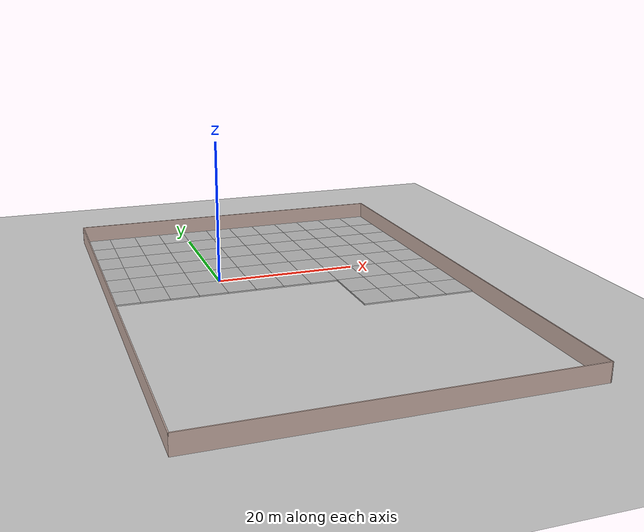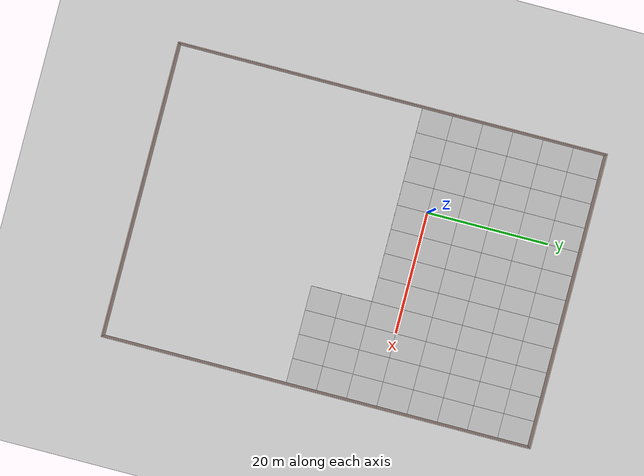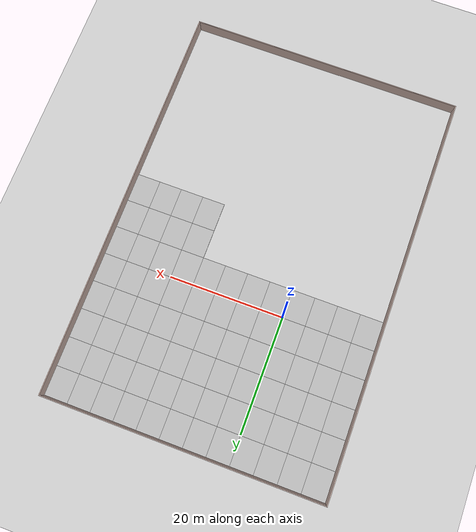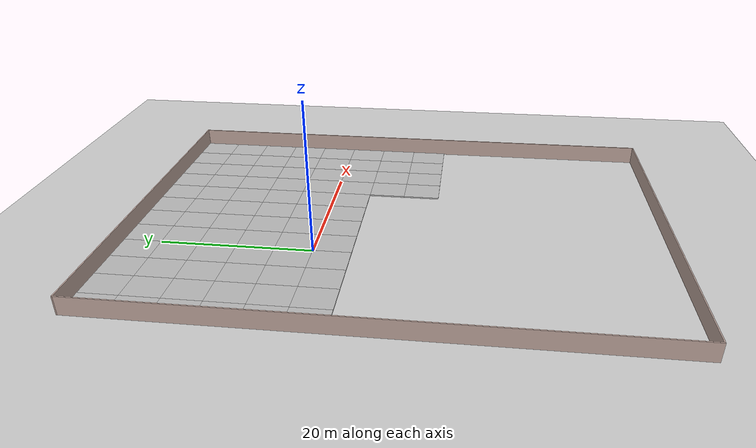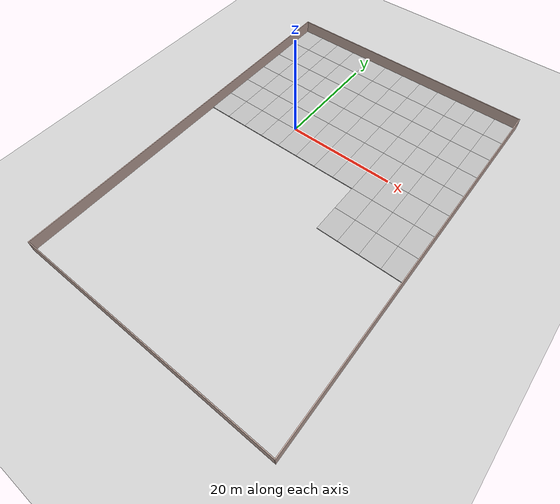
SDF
<sdf version="1.6">
 <world name="default">
  <model name="ground_plane">
   <static>1</static>
   <link name="link">
    <collision name="collision">
     <geometry><plane><normal>0 0 1</normal><size>100 100</size></plane></geometry>
     <surface>
      <contact><collide_bitmask>65535</collide_bitmask></contact>
      <friction><ode><mu>100</mu><mu2>50</mu2></ode></friction>
     </surface>
    </collision>
    <visual name="visual">
     <cast_shadows>0</cast_shadows>
     <geometry><plane><normal>0 0 1</normal><size>100 100</size></plane></geometry>
     <material>
      <script><uri>file://media/materials/scripts/gazebo.material</uri><name>Gazebo/Grey</name></script>
     </material>
    </visual>
   </link>
  </model>
  <model name="mud_box">
   <static>1</static>
   <link name="link">
    <collision name="collision"><geometry><box><size>8 10 0.2</size></box></geometry></collision>
    <visual name="visual_1">
     <pose>-2 2.5 0 0 -0 0</pose>
     <cast_shadows>0</cast_shadows>
     <geometry><box><size>4 5 0.2</size></box></geometry>
     <material>
      <script>
       <uri>model://mud_box/materials/scripts</uri>
       <uri>model://mud_box/materials/textures</uri>
       <name>vrc/mud</name>
      </script>
     </material>
    </visual>
    <visual name="visual_2">
     <pose>2 2.5 0 0 -0 0</pose>
     <cast_shadows>0</cast_shadows>
     <geometry><box><size>4 5 0.2</size></box></geometry>
     <material>
      <script>
       <uri>model://mud_box/materials/scripts</uri>
       <uri>model://mud_box/materials/textures</uri>
       <name>vrc/mud</name>
      </script>
     </material>
    </visual>
    <visual name="visual_3">
     <pose>2 -2.5 0 0 -0 0</pose>
     <cast_shadows>0</cast_shadows>
     <geometry><box><size>4 5 0.2</size></box></geometry>
     <material>
      <script>
       <uri>model://mud_box/materials/scripts</uri>
       <uri>model://mud_box/materials/textures</uri>
       <name>vrc/mud</name>
      </script>
     </material>
    </visual>
    <visual name="visual_4">
     <pose>-2 -2.5 0 0 -0 0</pose>
     <cast_shadows>0</cast_shadows>
     <geometry><box><size>4 5 0.2</size></box></geometry>
     <material>
      <script>
       <uri>model://mud_box/materials/scripts</uri>
       <uri>model://mud_box/materials/textures</uri>
       <name>vrc/mud</name>
      </script>
     </material>
    </visual>
   </link>
   <pose>4 0 0 0 -0 0</pose>
  </model>
  <model name="mud_box_clone">
   <static>1</static>
   <link name="link">
    <collision name="collision"><geometry><box><size>8 10 0.2</size></box></geometry></collision>
    <visual name="visual_1">
     <pose>-2 2.5 0 0 -0 0</pose>
     <cast_shadows>0</cast_shadows>
     <geometry><box><size>4 5 0.2</size></box></geometry>
     <material>
      <script>
       <uri>model://mud_box/materials/scripts</uri>
       <uri>model://mud_box/materials/textures</uri>
       <name>vrc/mud</name>
      </script>
     </material>
    </visual>
    <visual name="visual_2">
     <pose>2 2.5 0 0 -0 0</pose>
     <cast_shadows>0</cast_shadows>
     <geometry><box><size>4 5 0.2</size></box></geometry>
     <material>
      <script>
       <uri>model://mud_box/materials/scripts</uri>
       <uri>model://mud_box/materials/textures</uri>
       <name>vrc/mud</name>
      </script>
     </material>
    </visual>
    <visual name="visual_3">
     <pose>2 -2.5 0 0 -0 0</pose>
     <cast_shadows>0</cast_shadows>
     <geometry><box><size>4 5 0.2</size></box></geometry>
     <material>
      <script>
       <uri>model://mud_box/materials/scripts</uri>
       <uri>model://mud_box/materials/textures</uri>
       <name>vrc/mud</name>
      </script>
     </material>
    </visual>
    <visual name="visual_4">
     <pose>-2 -2.5 0 0 -0 0</pose>
     <cast_shadows>0</cast_shadows>
     <geometry><box><size>4 5 0.2</size></box></geometry>
     <material>
      <script>
       <uri>model://mud_box/materials/scripts</uri>
       <uri>model://mud_box/materials/textures</uri>
       <name>vrc/mud</name>
      </script>
     </material>
    </visual>
   </link>
   <pose>-4 0 0 0 -0 0</pose>
  </model>
  <model name="mud_box_clone_clone_1">
   <static>1</static>
   <link name="link">
    <collision name="collision"><geometry><box><size>8 10 0.2</size></box></geometry></collision>
    <visual name="visual_1">
     <pose>-2 2.5 0 0 -0 0</pose>
     <cast_shadows>0</cast_shadows>
     <geometry><box><size>4 5 0.2</size></box></geometry>
     <material>
      <script>
       <uri>model://mud_box/materials/scripts</uri>
       <uri>model://mud_box/materials/textures</uri>
       <name>vrc/mud</name>
      </script>
     </material>
    </visual>
    <visual name="visual_2">
     <pose>2 2.5 0 0 -0 0</pose>
     <cast_shadows>0</cast_shadows>
     <geometry><box><size>4 5 0.2</size></box></geometry>
     <material>
      <script>
       <uri>model://mud_box/materials/scripts</uri>
       <uri>model://mud_box/materials/textures</uri>
       <name>vrc/mud</name>
      </script>
     </material>
    </visual>
    <visual name="visual_3">
     <pose>2 -2.5 0 0 -0 0</pose>
     <cast_shadows>0</cast_shadows>
     <geometry><box><size>4 5 0.2</size></box></geometry>
     <material>
      <script>
       <uri>model://mud_box/materials/scripts</uri>
       <uri>model://mud_box/materials/textures</uri>
       <name>vrc/mud</name>
      </script>
     </material>
    </visual>
    <visual name="visual_4">
     <pose>-2 -2.5 0 0 -0 0</pose>
     <cast_shadows>0</cast_shadows>
     <geometry><box><size>4 5 0.2</size></box></geometry>
     <material>
      <script>
       <uri>model://mud_box/materials/scripts</uri>
       <uri>model://mud_box/materials/textures</uri>
       <name>vrc/mud</name>
      </script>
     </material>
    </visual>
   </link>
   <pose>12 0 0 0 -0 0</pose>
  </model>
  <model name="mud_box_clone_clone_2">
   <static>1</static>
   <link name="link">
    <collision name="collision"><geometry><box><size>8 10 0.2</size></box></geometry></collision>
    <visual name="visual_1">
     <pose>-2 2.5 0 0 -0 0</pose>
     <cast_shadows>0</cast_shadows>
     <geometry><box><size>4 5 0.2</size></box></geometry>
     <material>
      <script>
       <uri>model://mud_box/materials/scripts</uri>
       <uri>model://mud_box/materials/textures</uri>
       <name>vrc/mud</name>
      </script>
     </material>
    </visual>
    <visual name="visual_2">
     <pose>2 2.5 0 0 -0 0</pose>
     <cast_shadows>0</cast_shadows>
     <geometry><box><size>4 5 0.2</size></box></geometry>
     <material>
      <script>
       <uri>model://mud_box/materials/scripts</uri>
       <uri>model://mud_box/materials/textures</uri>
       <name>vrc/mud</name>
      </script>
     </material>
    </visual>
    <visual name="visual_3">
     <pose>2 -2.5 0 0 -0 0</pose>
     <cast_shadows>0</cast_shadows>
     <geometry><box><size>4 5 0.2</size></box></geometry>
     <material>
      <script>
       <uri>model://mud_box/materials/scripts</uri>
       <uri>model://mud_box/materials/textures</uri>
       <name>vrc/mud</name>
      </script>
     </material>
    </visual>
    <visual name="visual_4">
     <pose>-2 -2.5 0 0 -0 0</pose>
     <cast_shadows>0</cast_shadows>
     <geometry><box><size>4 5 0.2</size></box></geometry>
     <material>
      <script>
       <uri>model://mud_box/materials/scripts</uri>
       <uri>model://mud_box/materials/textures</uri>
       <name>vrc/mud</name>
      </script>
     </material>
    </visual>
   </link>
   <pose>-12 0 0 0 -0 0</pose>
  </model>
  <model name="mud_box_clone_clone_5">
   <static>1</static>
   <link name="link">
    <collision name="collision"><geometry><box><size>8 10 0.2</size></box></geometry></collision>
    <visual name="visual_1">
     <pose>-2 2.5 0 0 -0 0</pose>
     <cast_shadows>0</cast_shadows>
     <geometry><box><size>4 5 0.2</size></box></geometry>
     <material>
      <script>
       <uri>model://mud_box/materials/scripts</uri>
       <uri>model://mud_box/materials/textures</uri>
       <name>vrc/mud</name>
      </script>
     </material>
    </visual>
    <visual name="visual_2">
     <pose>2 2.5 0 0 -0 0</pose>
     <cast_shadows>0</cast_shadows>
     <geometry><box><size>4 5 0.2</size></box></geometry>
     <material>
      <script>
       <uri>model://mud_box/materials/scripts</uri>
       <uri>model://mud_box/materials/textures</uri>
       <name>vrc/mud</name>
      </script>
     </material>
    </visual>
    <visual name="visual_3">
     <pose>2 -2.5 0 0 -0 0</pose>
     <cast_shadows>0</cast_shadows>
     <geometry><box><size>4 5 0.2</size></box></geometry>
     <material>
      <script>
       <uri>model://mud_box/materials/scripts</uri>
       <uri>model://mud_box/materials/textures</uri>
       <name>vrc/mud</name>
      </script>
     </material>
    </visual>
    <visual name="visual_4">
     <pose>-2 -2.5 0 0 -0 0</pose>
     <cast_shadows>0</cast_shadows>
     <geometry><box><size>4 5 0.2</size></box></geometry>
     <material>
      <script>
       <uri>model://mud_box/materials/scripts</uri>
       <uri>model://mud_box/materials/textures</uri>
       <name>vrc/mud</name>
      </script>
     </material>
    </visual>
   </link>
   <pose>-12 10 0 0 -0 0</pose>
  </model>
  <model name="mud_box_clone_clone_6">
   <static>1</static>
   <link name="link">
    <collision name="collision"><geometry><box><size>8 10 0.2</size></box></geometry></collision>
    <visual name="visual_1">
     <pose>-2 2.5 0 0 -0 0</pose>
     <cast_shadows>0</cast_shadows>
     <geometry><box><size>4 5 0.2</size></box></geometry>
     <material>
      <script>
       <uri>model://mud_box/materials/scripts</uri>
       <uri>model://mud_box/materials/textures</uri>
       <name>vrc/mud</name>
      </script>
     </material>
    </visual>
    <visual name="visual_2">
     <pose>2 2.5 0 0 -0 0</pose>
     <cast_shadows>0</cast_shadows>
     <geometry><box><size>4 5 0.2</size></box></geometry>
     <material>
      <script>
       <uri>model://mud_box/materials/scripts</uri>
       <uri>model://mud_box/materials/textures</uri>
       <name>vrc/mud</name>
      </script>
     </material>
    </visual>
    <visual name="visual_3">
     <pose>2 -2.5 0 0 -0 0</pose>
     <cast_shadows>0</cast_shadows>
     <geometry><box><size>4 5 0.2</size></box></geometry>
     <material>
      <script>
       <uri>model://mud_box/materials/scripts</uri>
       <uri>model://mud_box/materials/textures</uri>
       <name>vrc/mud</name>
      </script>
     </material>
    </visual>
    <visual name="visual_4">
     <pose>-2 -2.5 0 0 -0 0</pose>
     <cast_shadows>0</cast_shadows>
     <geometry><box><size>4 5 0.2</size></box></geometry>
     <material>
      <script>
       <uri>model://mud_box/materials/scripts</uri>
       <uri>model://mud_box/materials/textures</uri>
       <name>vrc/mud</name>
      </script>
     </material>
    </visual>
   </link>
   <pose>-4 10 0 0 -0 0</pose>
  </model>
  <model name="mud_box_clone_clone_7">
   <static>1</static>
   <link name="link">
    <collision name="collision"><geometry><box><size>8 10 0.2</size></box></geometry></collision>
    <visual name="visual_1">
     <pose>-2 2.5 0 0 -0 0</pose>
     <cast_shadows>0</cast_shadows>
     <geometry><box><size>4 5 0.2</size></box></geometry>
     <material>
      <script>
       <uri>model://mud_box/materials/scripts</uri>
       <uri>model://mud_box/materials/textures</uri>
       <name>vrc/mud</name>
      </script>
     </material>
    </visual>
    <visual name="visual_2">
     <pose>2 2.5 0 0 -0 0</pose>
     <cast_shadows>0</cast_shadows>
     <geometry><box><size>4 5 0.2</size></box></geometry>
     <material>
      <script>
       <uri>model://mud_box/materials/scripts</uri>
       <uri>model://mud_box/materials/textures</uri>
       <name>vrc/mud</name>
      </script>
     </material>
    </visual>
    <visual name="visual_3">
     <pose>2 -2.5 0 0 -0 0</pose>
     <cast_shadows>0</cast_shadows>
     <geometry><box><size>4 5 0.2</size></box></geometry>
     <material>
      <script>
       <uri>model://mud_box/materials/scripts</uri>
       <uri>model://mud_box/materials/textures</uri>
       <name>vrc/mud</name>
      </script>
     </material>
    </visual>
    <visual name="visual_4">
     <pose>-2 -2.5 0 0 -0 0</pose>
     <cast_shadows>0</cast_shadows>
     <geometry><box><size>4 5 0.2</size></box></geometry>
     <material>
      <script>
       <uri>model://mud_box/materials/scripts</uri>
       <uri>model://mud_box/materials/textures</uri>
       <name>vrc/mud</name>
      </script>
     </material>
    </visual>
   </link>
   <pose>4 10 0 0 -0 0</pose>
  </model>
  <model name="mud_box_clone_clone_8">
   <static>1</static>
   <link name="link">
    <collision name="collision"><geometry><box><size>8 10 0.2</size></box></geometry></collision>
    <visual name="visual_1">
     <pose>-2 2.5 0 0 -0 0</pose>
     <cast_shadows>0</cast_shadows>
     <geometry><box><size>4 5 0.2</size></box></geometry>
     <material>
      <script>
       <uri>model://mud_box/materials/scripts</uri>
       <uri>model://mud_box/materials/textures</uri>
       <name>vrc/mud</name>
      </script>
     </material>
    </visual>
    <visual name="visual_2">
     <pose>2 2.5 0 0 -0 0</pose>
     <cast_shadows>0</cast_shadows>
     <geometry><box><size>4 5 0.2</size></box></geometry>
     <material>
      <script>
       <uri>model://mud_box/materials/scripts</uri>
       <uri>model://mud_box/materials/textures</uri>
       <name>vrc/mud</name>
      </script>
     </material>
    </visual>
    <visual name="visual_3">
     <pose>2 -2.5 0 0 -0 0</pose>
     <cast_shadows>0</cast_shadows>
     <geometry><box><size>4 5 0.2</size></box></geometry>
     <material>
      <script>
       <uri>model://mud_box/materials/scripts</uri>
       <uri>model://mud_box/materials/textures</uri>
       <name>vrc/mud</name>
      </script>
     </material>
    </visual>
    <visual name="visual_4">
     <pose>-2 -2.5 0 0 -0 0</pose>
     <cast_shadows>0</cast_shadows>
     <geometry><box><size>4 5 0.2</size></box></geometry>
     <material>
      <script>
       <uri>model://mud_box/materials/scripts</uri>
       <uri>model://mud_box/materials/textures</uri>
       <name>vrc/mud</name>
      </script>
     </material>
    </visual>
   </link>
   <pose>12 10 0 0 -0 0</pose>
  </model>
  <model name="mud_box_clone_clone_4_clone_clone_0">
   <static>1</static>
   <link name="link">
    <collision name="collision"><geometry><box><size>8 10 0.2</size></box></geometry></collision>
    <visual name="visual_1">
     <pose>-2 2.5 0 0 -0 0</pose>
     <cast_shadows>0</cast_shadows>
     <geometry><box><size>4 5 0.2</size></box></geometry>
     <material>
      <script>
       <uri>model://mud_box/materials/scripts</uri>
       <uri>model://mud_box/materials/textures</uri>
       <name>vrc/mud</name>
      </script>
     </material>
    </visual>
    <visual name="visual_2">
     <pose>2 2.5 0 0 -0 0</pose>
     <cast_shadows>0</cast_shadows>
     <geometry><box><size>4 5 0.2</size></box></geometry>
     <material>
      <script>
       <uri>model://mud_box/materials/scripts</uri>
       <uri>model://mud_box/materials/textures</uri>
       <name>vrc/mud</name>
      </script>
     </material>
    </visual>
    <visual name="visual_3">
     <pose>2 -2.5 0 0 -0 0</pose>
     <cast_shadows>0</cast_shadows>
     <geometry><box><size>4 5 0.2</size></box></geometry>
     <material>
      <script>
       <uri>model://mud_box/materials/scripts</uri>
       <uri>model://mud_box/materials/textures</uri>
       <name>vrc/mud</name>
      </script>
     </material>
    </visual>
    <visual name="visual_4">
     <pose>-2 -2.5 0 0 -0 0</pose>
     <cast_shadows>0</cast_shadows>
     <geometry><box><size>4 5 0.2</size></box></geometry>
     <material>
      <script>
       <uri>model://mud_box/materials/scripts</uri>
       <uri>model://mud_box/materials/textures</uri>
       <name>vrc/mud</name>
      </script>
     </material>
    </visual>
   </link>
   <pose>20 -10 0 0 -0 0</pose>
  </model>
  <model name="mud_box_clone_clone_4_clone_clone_1">
   <static>1</static>
   <link name="link">
    <collision name="collision"><geometry><box><size>8 10 0.2</size></box></geometry></collision>
    <visual name="visual_1">
     <pose>-2 2.5 0 0 -0 0</pose>
     <cast_shadows>0</cast_shadows>
     <geometry><box><size>4 5 0.2</size></box></geometry>
     <material>
      <script>
       <uri>model://mud_box/materials/scripts</uri>
       <uri>model://mud_box/materials/textures</uri>
       <name>vrc/mud</name>
      </script>
     </material>
    </visual>
    <visual name="visual_2">
     <pose>2 2.5 0 0 -0 0</pose>
     <cast_shadows>0</cast_shadows>
     <geometry><box><size>4 5 0.2</size></box></geometry>
     <material>
      <script>
       <uri>model://mud_box/materials/scripts</uri>
       <uri>model://mud_box/materials/textures</uri>
       <name>vrc/mud</name>
      </script>
     </material>
    </visual>
    <visual name="visual_3">
     <pose>2 -2.5 0 0 -0 0</pose>
     <cast_shadows>0</cast_shadows>
     <geometry><box><size>4 5 0.2</size></box></geometry>
     <material>
      <script>
       <uri>model://mud_box/materials/scripts</uri>
       <uri>model://mud_box/materials/textures</uri>
       <name>vrc/mud</name>
      </script>
     </material>
    </visual>
    <visual name="visual_4">
     <pose>-2 -2.5 0 0 -0 0</pose>
     <cast_shadows>0</cast_shadows>
     <geometry><box><size>4 5 0.2</size></box></geometry>
     <material>
      <script>
       <uri>model://mud_box/materials/scripts</uri>
       <uri>model://mud_box/materials/textures</uri>
       <name>vrc/mud</name>
      </script>
     </material>
    </visual>
   </link>
   <pose>20 0 0 0 -0 0</pose>
  </model>
  <model name="mud_box_clone_clone_4_clone_clone_2">
   <static>1</static>
   <link name="link">
    <collision name="collision"><geometry><box><size>8 10 0.2</size></box></geometry></collision>
    <visual name="visual_1">
     <pose>-2 2.5 0 0 -0 0</pose>
     <cast_shadows>0</cast_shadows>
     <geometry><box><size>4 5 0.2</size></box></geometry>
     <material>
      <script>
       <uri>model://mud_box/materials/scripts</uri>
       <uri>model://mud_box/materials/textures</uri>
       <name>vrc/mud</name>
      </script>
     </material>
    </visual>
    <visual name="visual_2">
     <pose>2 2.5 0 0 -0 0</pose>
     <cast_shadows>0</cast_shadows>
     <geometry><box><size>4 5 0.2</size></box></geometry>
     <material>
      <script>
       <uri>model://mud_box/materials/scripts</uri>
       <uri>model://mud_box/materials/textures</uri>
       <name>vrc/mud</name>
      </script>
     </material>
    </visual>
    <visual name="visual_3">
     <pose>2 -2.5 0 0 -0 0</pose>
     <cast_shadows>0</cast_shadows>
     <geometry><box><size>4 5 0.2</size></box></geometry>
     <material>
      <script>
       <uri>model://mud_box/materials/scripts</uri>
       <uri>model://mud_box/materials/textures</uri>
       <name>vrc/mud</name>
      </script>
     </material>
    </visual>
    <visual name="visual_4">
     <pose>-2 -2.5 0 0 -0 0</pose>
     <cast_shadows>0</cast_shadows>
     <geometry><box><size>4 5 0.2</size></box></geometry>
     <material>
      <script>
       <uri>model://mud_box/materials/scripts</uri>
       <uri>model://mud_box/materials/textures</uri>
       <name>vrc/mud</name>
      </script>
     </material>
    </visual>
   </link>
   <pose>20 10 0 0 -0 0</pose>
  </model>
  <model name="mud_box_clone_clone_4_clone_clone_4">
   <static>1</static>
   <link name="link">
    <collision name="collision"><geometry><box><size>8 10 0.2</size></box></geometry></collision>
    <visual name="visual_1">
     <pose>-2 2.5 0 0 -0 0</pose>
     <cast_shadows>0</cast_shadows>
     <geometry><box><size>4 5 0.2</size></box></geometry>
     <material>
      <script>
       <uri>model://mud_box/materials/scripts</uri>
       <uri>model://mud_box/materials/textures</uri>
       <name>vrc/mud</name>
      </script>
     </material>
    </visual>
    <visual name="visual_2">
     <pose>2 2.5 0 0 -0 0</pose>
     <cast_shadows>0</cast_shadows>
     <geometry><box><size>4 5 0.2</size></box></geometry>
     <material>
      <script>
       <uri>model://mud_box/materials/scripts</uri>
       <uri>model://mud_box/materials/textures</uri>
       <name>vrc/mud</name>
      </script>
     </material>
    </visual>
    <visual name="visual_3">
     <pose>2 -2.5 0 0 -0 0</pose>
     <cast_shadows>0</cast_shadows>
     <geometry><box><size>4 5 0.2</size></box></geometry>
     <material>
      <script>
       <uri>model://mud_box/materials/scripts</uri>
       <uri>model://mud_box/materials/textures</uri>
       <name>vrc/mud</name>
      </script>
     </material>
    </visual>
    <visual name="visual_4">
     <pose>-2 -2.5 0 0 -0 0</pose>
     <cast_shadows>0</cast_shadows>
     <geometry><box><size>4 5 0.2</size></box></geometry>
     <material>
      <script>
       <uri>model://mud_box/materials/scripts</uri>
       <uri>model://mud_box/materials/textures</uri>
       <name>vrc/mud</name>
      </script>
     </material>
    </visual>
   </link>
   <pose>20 20 0 0 -0 0</pose>
  </model>
  <model name="mud_box_clone_clone_4_clone_clone_4_clone">
   <static>1</static>
   <link name="link">
    <collision name="collision"><geometry><box><size>8 10 0.2</size></box></geometry></collision>
    <visual name="visual_1">
     <pose>-2 2.5 0 0 -0 0</pose>
     <cast_shadows>0</cast_shadows>
     <geometry><box><size>4 5 0.2</size></box></geometry>
     <material>
      <script>
       <uri>model://mud_box/materials/scripts</uri>
       <uri>model://mud_box/materials/textures</uri>
       <name>vrc/mud</name>
      </script>
     </material>
    </visual>
    <visual name="visual_2">
     <pose>2 2.5 0 0 -0 0</pose>
     <cast_shadows>0</cast_shadows>
     <geometry><box><size>4 5 0.2</size></box></geometry>
     <material>
      <script>
       <uri>model://mud_box/materials/scripts</uri>
       <uri>model://mud_box/materials/textures</uri>
       <name>vrc/mud</name>
      </script>
     </material>
    </visual>
    <visual name="visual_3">
     <pose>2 -2.5 0 0 -0 0</pose>
     <cast_shadows>0</cast_shadows>
     <geometry><box><size>4 5 0.2</size></box></geometry>
     <material>
      <script>
       <uri>model://mud_box/materials/scripts</uri>
       <uri>model://mud_box/materials/textures</uri>
       <name>vrc/mud</name>
      </script>
     </material>
    </visual>
    <visual name="visual_4">
     <pose>-2 -2.5 0 0 -0 0</pose>
     <cast_shadows>0</cast_shadows>
     <geometry><box><size>4 5 0.2</size></box></geometry>
     <material>
      <script>
       <uri>model://mud_box/materials/scripts</uri>
       <uri>model://mud_box/materials/textures</uri>
       <name>vrc/mud</name>
      </script>
     </material>
    </visual>
   </link>
   <pose>12 20 0 0 -0 0</pose>
  </model>
  <model name="mud_box_clone_clone_4_clone_clone_4_clone_0">
   <static>1</static>
   <link name="link">
    <collision name="collision"><geometry><box><size>8 10 0.2</size></box></geometry></collision>
    <visual name="visual_1">
     <pose>-2 2.5 0 0 -0 0</pose>
     <cast_shadows>0</cast_shadows>
     <geometry><box><size>4 5 0.2</size></box></geometry>
     <material>
      <script>
       <uri>model://mud_box/materials/scripts</uri>
       <uri>model://mud_box/materials/textures</uri>
       <name>vrc/mud</name>
      </script>
     </material>
    </visual>
    <visual name="visual_2">
     <pose>2 2.5 0 0 -0 0</pose>
     <cast_shadows>0</cast_shadows>
     <geometry><box><size>4 5 0.2</size></box></geometry>
     <material>
      <script>
       <uri>model://mud_box/materials/scripts</uri>
       <uri>model://mud_box/materials/textures</uri>
       <name>vrc/mud</name>
      </script>
     </material>
    </visual>
    <visual name="visual_3">
     <pose>2 -2.5 0 0 -0 0</pose>
     <cast_shadows>0</cast_shadows>
     <geometry><box><size>4 5 0.2</size></box></geometry>
     <material>
      <script>
       <uri>model://mud_box/materials/scripts</uri>
       <uri>model://mud_box/materials/textures</uri>
       <name>vrc/mud</name>
      </script>
     </material>
    </visual>
    <visual name="visual_4">
     <pose>-2 -2.5 0 0 -0 0</pose>
     <cast_shadows>0</cast_shadows>
     <geometry><box><size>4 5 0.2</size></box></geometry>
     <material>
      <script>
       <uri>model://mud_box/materials/scripts</uri>
       <uri>model://mud_box/materials/textures</uri>
       <name>vrc/mud</name>
      </script>
     </material>
    </visual>
   </link>
   <pose>4 20 0 0 -0 0</pose>
  </model>
  <model name="mud_box_clone_clone_4_clone_clone_4_clone_1">
   <static>1</static>
   <link name="link">
    <collision name="collision"><geometry><box><size>8 10 0.2</size></box></geometry></collision>
    <visual name="visual_1">
     <pose>-2 2.5 0 0 -0 0</pose>
     <cast_shadows>0</cast_shadows>
     <geometry><box><size>4 5 0.2</size></box></geometry>
     <material>
      <script>
       <uri>model://mud_box/materials/scripts</uri>
       <uri>model://mud_box/materials/textures</uri>
       <name>vrc/mud</name>
      </script>
     </material>
    </visual>
    <visual name="visual_2">
     <pose>2 2.5 0 0 -0 0</pose>
     <cast_shadows>0</cast_shadows>
     <geometry><box><size>4 5 0.2</size></box></geometry>
     <material>
      <script>
       <uri>model://mud_box/materials/scripts</uri>
       <uri>model://mud_box/materials/textures</uri>
       <name>vrc/mud</name>
      </script>
     </material>
    </visual>
    <visual name="visual_3">
     <pose>2 -2.5 0 0 -0 0</pose>
     <cast_shadows>0</cast_shadows>
     <geometry><box><size>4 5 0.2</size></box></geometry>
     <material>
      <script>
       <uri>model://mud_box/materials/scripts</uri>
       <uri>model://mud_box/materials/textures</uri>
       <name>vrc/mud</name>
      </script>
     </material>
    </visual>
    <visual name="visual_4">
     <pose>-2 -2.5 0 0 -0 0</pose>
     <cast_shadows>0</cast_shadows>
     <geometry><box><size>4 5 0.2</size></box></geometry>
     <material>
      <script>
       <uri>model://mud_box/materials/scripts</uri>
       <uri>model://mud_box/materials/textures</uri>
       <name>vrc/mud</name>
      </script>
     </material>
    </visual>
   </link>
   <pose>-4 20 0 0 -0 0</pose>
  </model>
  <model name="mud_box_clone_clone_4_clone_clone_4_clone_2">
   <static>1</static>
   <link name="link">
    <collision name="collision"><geometry><box><size>8 10 0.2</size></box></geometry></collision>
    <visual name="visual_1">
     <pose>-2 2.5 0 0 -0 0</pose>
     <cast_shadows>0</cast_shadows>
     <geometry><box><size>4 5 0.2</size></box></geometry>
     <material>
      <script>
       <uri>model://mud_box/materials/scripts</uri>
       <uri>model://mud_box/materials/textures</uri>
       <name>vrc/mud</name>
      </script>
     </material>
    </visual>
    <visual name="visual_2">
     <pose>2 2.5 0 0 -0 0</pose>
     <cast_shadows>0</cast_shadows>
     <geometry><box><size>4 5 0.2</size></box></geometry>
     <material>
      <script>
       <uri>model://mud_box/materials/scripts</uri>
       <uri>model://mud_box/materials/textures</uri>
       <name>vrc/mud</name>
      </script>
     </material>
    </visual>
    <visual name="visual_3">
     <pose>2 -2.5 0 0 -0 0</pose>
     <cast_shadows>0</cast_shadows>
     <geometry><box><size>4 5 0.2</size></box></geometry>
     <material>
      <script>
       <uri>model://mud_box/materials/scripts</uri>
       <uri>model://mud_box/materials/textures</uri>
       <name>vrc/mud</name>
      </script>
     </material>
    </visual>
    <visual name="visual_4">
     <pose>-2 -2.5 0 0 -0 0</pose>
     <cast_shadows>0</cast_shadows>
     <geometry><box><size>4 5 0.2</size></box></geometry>
     <material>
      <script>
       <uri>model://mud_box/materials/scripts</uri>
       <uri>model://mud_box/materials/textures</uri>
       <name>vrc/mud</name>
      </script>
     </material>
    </visual>
   </link>
   <pose>-12 20 0 0 -0 0</pose>
  </model>
  <model name="mud_box_clone_clone_4_clone_clone_3_clone_5">
   <static>1</static>
   <link name="link">
    <collision name="collision"><geometry><box><size>8 10 0.2</size></box></geometry></collision>
    <visual name="visual_1">
     <pose>-2 2.5 0 0 -0 0</pose>
     <cast_shadows>0</cast_shadows>
     <geometry><box><size>4 5 0.2</size></box></geometry>
     <material>
      <script>
       <uri>model://mud_box/materials/scripts</uri>
       <uri>model://mud_box/materials/textures</uri>
       <name>vrc/mud</name>
      </script>
     </material>
    </visual>
    <visual name="visual_2">
     <pose>2 2.5 0 0 -0 0</pose>
     <cast_shadows>0</cast_shadows>
     <geometry><box><size>4 5 0.2</size></box></geometry>
     <material>
      <script>
       <uri>model://mud_box/materials/scripts</uri>
       <uri>model://mud_box/materials/textures</uri>
       <name>vrc/mud</name>
      </script>
     </material>
    </visual>
    <visual name="visual_3">
     <pose>2 -2.5 0 0 -0 0</pose>
     <cast_shadows>0</cast_shadows>
     <geometry><box><size>4 5 0.2</size></box></geometry>
     <material>
      <script>
       <uri>model://mud_box/materials/scripts</uri>
       <uri>model://mud_box/materials/textures</uri>
       <name>vrc/mud</name>
      </script>
     </material>
    </visual>
    <visual name="visual_4">
     <pose>-2 -2.5 0 0 -0 0</pose>
     <cast_shadows>0</cast_shadows>
     <geometry><box><size>4 5 0.2</size></box></geometry>
     <material>
      <script>
       <uri>model://mud_box/materials/scripts</uri>
       <uri>model://mud_box/materials/textures</uri>
       <name>vrc/mud</name>
      </script>
     </material>
    </visual>
   </link>
   <pose>28 -10 0 0 -0 0</pose>
  </model>
  <model name="mud_box_clone_clone_4_clone_clone_3_clone_6">
   <static>1</static>
   <link name="link">
    <collision name="collision"><geometry><box><size>8 10 0.2</size></box></geometry></collision>
    <visual name="visual_1">
     <pose>-2 2.5 0 0 -0 0</pose>
     <cast_shadows>0</cast_shadows>
     <geometry><box><size>4 5 0.2</size></box></geometry>
     <material>
      <script>
       <uri>model://mud_box/materials/scripts</uri>
       <uri>model://mud_box/materials/textures</uri>
       <name>vrc/mud</name>
      </script>
     </material>
    </visual>
    <visual name="visual_2">
     <pose>2 2.5 0 0 -0 0</pose>
     <cast_shadows>0</cast_shadows>
     <geometry><box><size>4 5 0.2</size></box></geometry>
     <material>
      <script>
       <uri>model://mud_box/materials/scripts</uri>
       <uri>model://mud_box/materials/textures</uri>
       <name>vrc/mud</name>
      </script>
     </material>
    </visual>
    <visual name="visual_3">
     <pose>2 -2.5 0 0 -0 0</pose>
     <cast_shadows>0</cast_shadows>
     <geometry><box><size>4 5 0.2</size></box></geometry>
     <material>
      <script>
       <uri>model://mud_box/materials/scripts</uri>
       <uri>model://mud_box/materials/textures</uri>
       <name>vrc/mud</name>
      </script>
     </material>
    </visual>
    <visual name="visual_4">
     <pose>-2 -2.5 0 0 -0 0</pose>
     <cast_shadows>0</cast_shadows>
     <geometry><box><size>4 5 0.2</size></box></geometry>
     <material>
      <script>
       <uri>model://mud_box/materials/scripts</uri>
       <uri>model://mud_box/materials/textures</uri>
       <name>vrc/mud</name>
      </script>
     </material>
    </visual>
   </link>
   <pose>28 0 0 0 -0 0</pose>
  </model>
  <model name="mud_box_clone_clone_4_clone_clone_3_clone_7">
   <static>1</static>
   <link name="link">
    <collision name="collision"><geometry><box><size>8 10 0.2</size></box></geometry></collision>
    <visual name="visual_1">
     <pose>-2 2.5 0 0 -0 0</pose>
     <cast_shadows>0</cast_shadows>
     <geometry><box><size>4 5 0.2</size></box></geometry>
     <material>
      <script>
       <uri>model://mud_box/materials/scripts</uri>
       <uri>model://mud_box/materials/textures</uri>
       <name>vrc/mud</name>
      </script>
     </material>
    </visual>
    <visual name="visual_2">
     <pose>2 2.5 0 0 -0 0</pose>
     <cast_shadows>0</cast_shadows>
     <geometry><box><size>4 5 0.2</size></box></geometry>
     <material>
      <script>
       <uri>model://mud_box/materials/scripts</uri>
       <uri>model://mud_box/materials/textures</uri>
       <name>vrc/mud</name>
      </script>
     </material>
    </visual>
    <visual name="visual_3">
     <pose>2 -2.5 0 0 -0 0</pose>
     <cast_shadows>0</cast_shadows>
     <geometry><box><size>4 5 0.2</size></box></geometry>
     <material>
      <script>
       <uri>model://mud_box/materials/scripts</uri>
       <uri>model://mud_box/materials/textures</uri>
       <name>vrc/mud</name>
      </script>
     </material>
    </visual>
    <visual name="visual_4">
     <pose>-2 -2.5 0 0 -0 0</pose>
     <cast_shadows>0</cast_shadows>
     <geometry><box><size>4 5 0.2</size></box></geometry>
     <material>
      <script>
       <uri>model://mud_box/materials/scripts</uri>
       <uri>model://mud_box/materials/textures</uri>
       <name>vrc/mud</name>
      </script>
     </material>
    </visual>
   </link>
   <pose>28 10 0 0 -0 0</pose>
  </model>
  <model name="mud_box_clone_clone_4_clone_clone_3_clone_8">
   <static>1</static>
   <link name="link">
    <collision name="collision"><geometry><box><size>8 10 0.2</size></box></geometry></collision>
    <visual name="visual_1">
     <pose>-2 2.5 0 0 -0 0</pose>
     <cast_shadows>0</cast_shadows>
     <geometry><box><size>4 5 0.2</size></box></geometry>
     <material>
      <script>
       <uri>model://mud_box/materials/scripts</uri>
       <uri>model://mud_box/materials/textures</uri>
       <name>vrc/mud</name>
      </script>
     </material>
    </visual>
    <visual name="visual_2">
     <pose>2 2.5 0 0 -0 0</pose>
     <cast_shadows>0</cast_shadows>
     <geometry><box><size>4 5 0.2</size></box></geometry>
     <material>
      <script>
       <uri>model://mud_box/materials/scripts</uri>
       <uri>model://mud_box/materials/textures</uri>
       <name>vrc/mud</name>
      </script>
     </material>
    </visual>
    <visual name="visual_3">
     <pose>2 -2.5 0 0 -0 0</pose>
     <cast_shadows>0</cast_shadows>
     <geometry><box><size>4 5 0.2</size></box></geometry>
     <material>
      <script>
       <uri>model://mud_box/materials/scripts</uri>
       <uri>model://mud_box/materials/textures</uri>
       <name>vrc/mud</name>
      </script>
     </material>
    </visual>
    <visual name="visual_4">
     <pose>-2 -2.5 0 0 -0 0</pose>
     <cast_shadows>0</cast_shadows>
     <geometry><box><size>4 5 0.2</size></box></geometry>
     <material>
      <script>
       <uri>model://mud_box/materials/scripts</uri>
       <uri>model://mud_box/materials/textures</uri>
       <name>vrc/mud</name>
      </script>
     </material>
    </visual>
   </link>
   <pose>28 20 0 0 -0 0</pose>
  </model>
  <model name="Untitled11">
   <pose>8 -10 0 0 -0 0</pose>
   <link name="Wall_0">
    <collision name="Wall_0_Collision">
     <geometry><box><size>70.3 0.15 2.5</size></box></geometry>
     <pose>0 0 1.25 0 -0 0</pose>
    </collision>
    <visual name="Wall_0_Visual">
     <pose>0 0 1.25 0 -0 0</pose>
     <geometry><box><size>70.3 0.15 2.5</size></box></geometry>
     <material>
      <script><uri>file://media/materials/scripts/gazebo.material</uri><name>Gazebo/Grey</name></script>
      <ambient>0.760784 0.662745 0.627451 1</ambient>
     </material>
     <meta><layer>0</layer></meta>
    </visual>
    <pose>-24.075 0 0 0 -0 -1.5708</pose>
   </link>
   <link name="Wall_2">
    <collision name="Wall_2_Collision">
     <geometry><box><size>48.3 0.15 2.5</size></box></geometry>
     <pose>0 0 1.25 0 -0 0</pose>
    </collision>
    <visual name="Wall_2_Visual">
     <pose>0 0 1.25 0 -0 0</pose>
     <geometry><box><size>48.3 0.15 2.5</size></box></geometry>
     <material>
      <script><uri>file://media/materials/scripts/gazebo.material</uri><name>Gazebo/Grey</name></script>
      <ambient>0.760784 0.662745 0.627451 1</ambient>
     </material>
     <meta><layer>0</layer></meta>
    </visual>
    <pose>0 -35.075 0 0 -0 0</pose>
   </link>
   <link name="Wall_3">
    <collision name="Wall_3_Collision">
     <geometry><box><size>70.3 0.15 2.5</size></box></geometry>
     <pose>0 0 1.25 0 -0 0</pose>
    </collision>
    <visual name="Wall_3_Visual">
     <pose>0 0 1.25 0 -0 0</pose>
     <geometry><box><size>70.3 0.15 2.5</size></box></geometry>
     <material>
      <script><uri>file://media/materials/scripts/gazebo.material</uri><name>Gazebo/Grey</name></script>
      <ambient>0.760784 0.662745 0.627451 1</ambient>
     </material>
     <meta><layer>0</layer></meta>
    </visual>
    <pose>24.075 0 0 0 -0 1.5708</pose>
   </link>
   <link name="Wall_4">
    <collision name="Wall_4_Collision">
     <geometry><box><size>48.3 0.15 2.5</size></box></geometry>
     <pose>0 0 1.25 0 -0 0</pose>
    </collision>
    <visual name="Wall_4_Visual">
     <pose>0 0 1.25 0 -0 0</pose>
     <geometry><box><size>48.3 0.15 2.5</size></box></geometry>
     <material>
      <script><uri>file://media/materials/scripts/gazebo.material</uri><name>Gazebo/Grey</name></script>
      <ambient>0.760784 0.662745 0.627451 1</ambient>
     </material>
     <meta><layer>0</layer></meta>
    </visual>
    <pose>0 35.075 0 0 -0 3.14159</pose>
   </link>
   <static>1</static>
  </model>
 </world>
</sdf>
